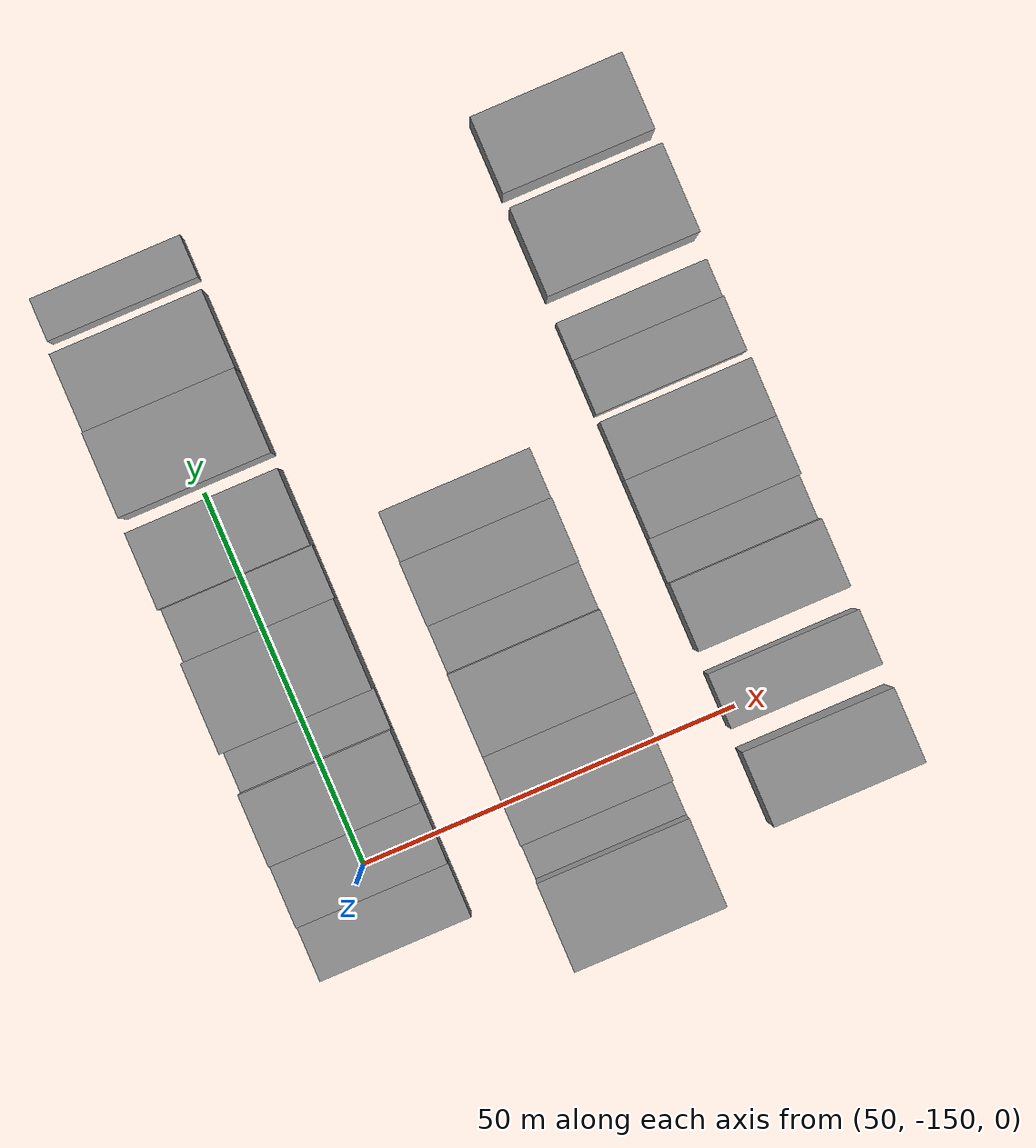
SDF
<sdf version="1.6">
 <world name="default">
  <model name="building_21">
   <static>1</static>
   <pose>50.0000 -156.8702 0 0.000000 0.000000 0.000000</pose>
   <link name="link">
    <pose>0 0 7.50 0 0 0</pose>
    <collision name="collision"><geometry><box><size>20.0000 7.2352 15.0000</size></box></geometry></collision>
    <visual name="visual">
     <cast_shadows>0</cast_shadows>
     <geometry><box><size>20.0000 7.2352 15.0000</size></box></geometry>
     <material>
      <script>
       <uri>model://grey_wall/materials/scripts</uri>
       <uri>model://grey_wall/materials/textures</uri>
       <name>vrc/grey_wall</name>
      </script>
     </material>
    </visual>
   </link>
  </model>
  <model name="building_22">
   <static>1</static>
   <pose>50.0000 -149.1597 0 0.000000 0.000000 0.000000</pose>
   <link name="link">
    <pose>0 0 9.00 0 0 0</pose>
    <collision name="collision"><geometry><box><size>20.0000 8.1858 18.0000</size></box></geometry></collision>
    <visual name="visual">
     <cast_shadows>0</cast_shadows>
     <geometry><box><size>20.0000 8.1858 18.0000</size></box></geometry>
     <material>
      <script>
       <uri>model://grey_wall/materials/scripts</uri>
       <uri>model://grey_wall/materials/textures</uri>
       <name>vrc/grey_wall</name>
      </script>
     </material>
    </visual>
   </link>
  </model>
  <model name="building_23">
   <static>1</static>
   <pose>50.0000 -140.3261 0 0.000000 0.000000 0.000000</pose>
   <link name="link">
    <pose>0 0 10.50 0 0 0</pose>
    <collision name="collision"><geometry><box><size>20.0000 9.4813 21.0000</size></box></geometry></collision>
    <visual name="visual">
     <cast_shadows>0</cast_shadows>
     <geometry><box><size>20.0000 9.4813 21.0000</size></box></geometry>
     <material>
      <script>
       <uri>model://grey_wall/materials/scripts</uri>
       <uri>model://grey_wall/materials/textures</uri>
       <name>vrc/grey_wall</name>
      </script>
     </material>
    </visual>
   </link>
  </model>
  <model name="building_24">
   <static>1</static>
   <pose>50.0000 -132.8740 0 0.000000 0.000000 0.000000</pose>
   <link name="link">
    <pose>0 0 6.00 0 0 0</pose>
    <collision name="collision"><geometry><box><size>20.0000 5.4228 12.0000</size></box></geometry></collision>
    <visual name="visual">
     <cast_shadows>0</cast_shadows>
     <geometry><box><size>20.0000 5.4228 12.0000</size></box></geometry>
     <material>
      <script>
       <uri>model://grey_wall/materials/scripts</uri>
       <uri>model://grey_wall/materials/textures</uri>
       <name>vrc/grey_wall</name>
      </script>
     </material>
    </visual>
   </link>
  </model>
  <model name="building_25">
   <static>1</static>
   <pose>50.0000 -124.2080 0 0.000000 0.000000 0.000000</pose>
   <link name="link">
    <pose>0 0 12.00 0 0 0</pose>
    <collision name="collision"><geometry><box><size>20.0000 11.9093 24.0000</size></box></geometry></collision>
    <visual name="visual">
     <cast_shadows>0</cast_shadows>
     <geometry><box><size>20.0000 11.9093 24.0000</size></box></geometry>
     <material>
      <script>
       <uri>model://grey_wall/materials/scripts</uri>
       <uri>model://grey_wall/materials/textures</uri>
       <name>vrc/grey_wall</name>
      </script>
     </material>
    </visual>
   </link>
  </model>
  <model name="building_26">
   <static>1</static>
   <pose>50.0000 -114.7484 0 0.000000 0.000000 0.000000</pose>
   <link name="link">
    <pose>0 0 7.50 0 0 0</pose>
    <collision name="collision"><geometry><box><size>20.0000 7.0100 15.0000</size></box></geometry></collision>
    <visual name="visual">
     <cast_shadows>0</cast_shadows>
     <geometry><box><size>20.0000 7.0100 15.0000</size></box></geometry>
     <material>
      <script>
       <uri>model://grey_wall/materials/scripts</uri>
       <uri>model://grey_wall/materials/textures</uri>
       <name>vrc/grey_wall</name>
      </script>
     </material>
    </visual>
   </link>
  </model>
  <model name="building_27">
   <static>1</static>
   <pose>50.0000 -106.2114 0 0.000000 0.000000 0.000000</pose>
   <link name="link">
    <pose>0 0 12.00 0 0 0</pose>
    <collision name="collision"><geometry><box><size>20.0000 10.0640 24.0000</size></box></geometry></collision>
    <visual name="visual">
     <cast_shadows>0</cast_shadows>
     <geometry><box><size>20.0000 10.0640 24.0000</size></box></geometry>
     <material>
      <script>
       <uri>model://grey_wall/materials/scripts</uri>
       <uri>model://grey_wall/materials/textures</uri>
       <name>vrc/grey_wall</name>
      </script>
     </material>
    </visual>
   </link>
  </model>
  <model name="building_28">
   <static>1</static>
   <pose>50.0000 -93.5973 0 0.000000 0.000000 0.000000</pose>
   <link name="link">
    <pose>0 0 12.00 0 0 0</pose>
    <collision name="collision"><geometry><box><size>20.0000 11.1640 24.0000</size></box></geometry></collision>
    <visual name="visual">
     <cast_shadows>0</cast_shadows>
     <geometry><box><size>20.0000 11.1640 24.0000</size></box></geometry>
     <material>
      <script>
       <uri>model://grey_wall/materials/scripts</uri>
       <uri>model://grey_wall/materials/textures</uri>
       <name>vrc/grey_wall</name>
      </script>
     </material>
    </visual>
   </link>
  </model>
  <model name="building_29">
   <static>1</static>
   <pose>50.0000 -82.8257 0 0.000000 0.000000 0.000000</pose>
   <link name="link">
    <pose>0 0 10.50 0 0 0</pose>
    <collision name="collision"><geometry><box><size>20.0000 10.3791 21.0000</size></box></geometry></collision>
    <visual name="visual">
     <cast_shadows>0</cast_shadows>
     <geometry><box><size>20.0000 10.3791 21.0000</size></box></geometry>
     <material>
      <script>
       <uri>model://grey_wall/materials/scripts</uri>
       <uri>model://grey_wall/materials/textures</uri>
       <name>vrc/grey_wall</name>
      </script>
     </material>
    </visual>
   </link>
  </model>
  <model name="building_30">
   <static>1</static>
   <pose>50.0000 -72.8177 0 0.000000 0.000000 0.000000</pose>
   <link name="link">
    <pose>0 0 6.00 0 0 0</pose>
    <collision name="collision"><geometry><box><size>20.0000 5.6370 12.0000</size></box></geometry></collision>
    <visual name="visual">
     <cast_shadows>0</cast_shadows>
     <geometry><box><size>20.0000 5.6370 12.0000</size></box></geometry>
     <material>
      <script>
       <uri>model://grey_wall/materials/scripts</uri>
       <uri>model://grey_wall/materials/textures</uri>
       <name>vrc/grey_wall</name>
      </script>
     </material>
    </visual>
   </link>
  </model>
  <model name="building_96">
   <static>1</static>
   <pose>79.0000 -165.2545 0 0.000000 0.000000 0.000000</pose>
   <link name="link">
    <pose>0 0 12.00 0 0 0</pose>
    <collision name="collision"><geometry><box><size>20.0000 11.6350 24.0000</size></box></geometry></collision>
    <visual name="visual">
     <cast_shadows>0</cast_shadows>
     <geometry><box><size>20.0000 11.6350 24.0000</size></box></geometry>
     <material>
      <script>
       <uri>model://grey_wall/materials/scripts</uri>
       <uri>model://grey_wall/materials/textures</uri>
       <name>vrc/grey_wall</name>
      </script>
     </material>
    </visual>
   </link>
  </model>
  <model name="building_97">
   <static>1</static>
   <pose>79.0000 -156.9919 0 0.000000 0.000000 0.000000</pose>
   <link name="link">
    <pose>0 0 6.00 0 0 0</pose>
    <collision name="collision"><geometry><box><size>20.0000 4.8903 12.0000</size></box></geometry></collision>
    <visual name="visual">
     <cast_shadows>0</cast_shadows>
     <geometry><box><size>20.0000 4.8903 12.0000</size></box></geometry>
     <material>
      <script>
       <uri>model://grey_wall/materials/scripts</uri>
       <uri>model://grey_wall/materials/textures</uri>
       <name>vrc/grey_wall</name>
      </script>
     </material>
    </visual>
   </link>
  </model>
  <model name="building_98">
   <static>1</static>
   <pose>79.0000 -148.7272 0 0.000000 0.000000 0.000000</pose>
   <link name="link">
    <pose>0 0 12.00 0 0 0</pose>
    <collision name="collision"><geometry><box><size>20.0000 11.6391 24.0000</size></box></geometry></collision>
    <visual name="visual">
     <cast_shadows>0</cast_shadows>
     <geometry><box><size>20.0000 11.6391 24.0000</size></box></geometry>
     <material>
      <script>
       <uri>model://grey_wall/materials/scripts</uri>
       <uri>model://grey_wall/materials/textures</uri>
       <name>vrc/grey_wall</name>
      </script>
     </material>
    </visual>
   </link>
  </model>
  <model name="building_99">
   <static>1</static>
   <pose>79.0000 -137.5012 0 0.000000 0.000000 0.000000</pose>
   <link name="link">
    <pose>0 0 12.00 0 0 0</pose>
    <collision name="collision"><geometry><box><size>20.0000 10.8128 24.0000</size></box></geometry></collision>
    <visual name="visual">
     <cast_shadows>0</cast_shadows>
     <geometry><box><size>20.0000 10.8128 24.0000</size></box></geometry>
     <material>
      <script>
       <uri>model://grey_wall/materials/scripts</uri>
       <uri>model://grey_wall/materials/textures</uri>
       <name>vrc/grey_wall</name>
      </script>
     </material>
    </visual>
   </link>
  </model>
  <model name="building_100">
   <static>1</static>
   <pose>79.0000 -128.9704 0 0.000000 0.000000 0.000000</pose>
   <link name="link">
    <pose>0 0 7.50 0 0 0</pose>
    <collision name="collision"><geometry><box><size>20.0000 6.2487 15.0000</size></box></geometry></collision>
    <visual name="visual">
     <cast_shadows>0</cast_shadows>
     <geometry><box><size>20.0000 6.2487 15.0000</size></box></geometry>
     <material>
      <script>
       <uri>model://grey_wall/materials/scripts</uri>
       <uri>model://grey_wall/materials/textures</uri>
       <name>vrc/grey_wall</name>
      </script>
     </material>
    </visual>
   </link>
  </model>
  <model name="building_101">
   <static>1</static>
   <pose>79.0000 -121.6232 0 0.000000 0.000000 0.000000</pose>
   <link name="link">
    <pose>0 0 10.50 0 0 0</pose>
    <collision name="collision"><geometry><box><size>20.0000 8.4457 21.0000</size></box></geometry></collision>
    <visual name="visual">
     <cast_shadows>0</cast_shadows>
     <geometry><box><size>20.0000 8.4457 21.0000</size></box></geometry>
     <material>
      <script>
       <uri>model://grey_wall/materials/scripts</uri>
       <uri>model://grey_wall/materials/textures</uri>
       <name>vrc/grey_wall</name>
      </script>
     </material>
    </visual>
   </link>
  </model>
  <model name="building_102">
   <static>1</static>
   <pose>79.0000 -114.0751 0 0.000000 0.000000 0.000000</pose>
   <link name="link">
    <pose>0 0 7.50 0 0 0</pose>
    <collision name="collision"><geometry><box><size>20.0000 6.6504 15.0000</size></box></geometry></collision>
    <visual name="visual">
     <cast_shadows>0</cast_shadows>
     <geometry><box><size>20.0000 6.6504 15.0000</size></box></geometry>
     <material>
      <script>
       <uri>model://grey_wall/materials/scripts</uri>
       <uri>model://grey_wall/materials/textures</uri>
       <name>vrc/grey_wall</name>
      </script>
     </material>
    </visual>
   </link>
  </model>
  <model name="building_162">
   <static>1</static>
   <pose>108.0000 -159.6950 0 0.000000 0.000000 0.000000</pose>
   <link name="link">
    <pose>0 0 10.50 0 0 0</pose>
    <collision name="collision"><geometry><box><size>20.0000 9.8660 21.0000</size></box></geometry></collision>
    <visual name="visual">
     <cast_shadows>0</cast_shadows>
     <geometry><box><size>20.0000 9.8660 21.0000</size></box></geometry>
     <material>
      <script>
       <uri>model://grey_wall/materials/scripts</uri>
       <uri>model://grey_wall/materials/textures</uri>
       <name>vrc/grey_wall</name>
      </script>
     </material>
    </visual>
   </link>
  </model>
  <model name="building_163">
   <static>1</static>
   <pose>108.0000 -148.1454 0 0.000000 0.000000 0.000000</pose>
   <link name="link">
    <pose>0 0 9.00 0 0 0</pose>
    <collision name="collision"><geometry><box><size>20.0000 7.2331 18.0000</size></box></geometry></collision>
    <visual name="visual">
     <cast_shadows>0</cast_shadows>
     <geometry><box><size>20.0000 7.2331 18.0000</size></box></geometry>
     <material>
      <script>
       <uri>model://grey_wall/materials/scripts</uri>
       <uri>model://grey_wall/materials/textures</uri>
       <name>vrc/grey_wall</name>
      </script>
     </material>
    </visual>
   </link>
  </model>
  <model name="building_164">
   <static>1</static>
   <pose>108.0000 -137.0454 0 0.000000 0.000000 0.000000</pose>
   <link name="link">
    <pose>0 0 10.50 0 0 0</pose>
    <collision name="collision"><geometry><box><size>20.0000 8.9670 21.0000</size></box></geometry></collision>
    <visual name="visual">
     <cast_shadows>0</cast_shadows>
     <geometry><box><size>20.0000 8.9670 21.0000</size></box></geometry>
     <material>
      <script>
       <uri>model://grey_wall/materials/scripts</uri>
       <uri>model://grey_wall/materials/textures</uri>
       <name>vrc/grey_wall</name>
      </script>
     </material>
    </visual>
   </link>
  </model>
  <model name="building_165">
   <static>1</static>
   <pose>108.0000 -129.6242 0 0.000000 0.000000 0.000000</pose>
   <link name="link">
    <pose>0 0 6.00 0 0 0</pose>
    <collision name="collision"><geometry><box><size>20.0000 5.8754 12.0000</size></box></geometry></collision>
    <visual name="visual">
     <cast_shadows>0</cast_shadows>
     <geometry><box><size>20.0000 5.8754 12.0000</size></box></geometry>
     <material>
      <script>
       <uri>model://grey_wall/materials/scripts</uri>
       <uri>model://grey_wall/materials/textures</uri>
       <name>vrc/grey_wall</name>
      </script>
     </material>
    </visual>
   </link>
  </model>
  <model name="building_166">
   <static>1</static>
   <pose>108.0000 -122.8321 0 0.000000 0.000000 0.000000</pose>
   <link name="link">
    <pose>0 0 9.00 0 0 0</pose>
    <collision name="collision"><geometry><box><size>20.0000 7.7088 18.0000</size></box></geometry></collision>
    <visual name="visual">
     <cast_shadows>0</cast_shadows>
     <geometry><box><size>20.0000 7.7088 18.0000</size></box></geometry>
     <material>
      <script>
       <uri>model://grey_wall/materials/scripts</uri>
       <uri>model://grey_wall/materials/textures</uri>
       <name>vrc/grey_wall</name>
      </script>
     </material>
    </visual>
   </link>
  </model>
  <model name="building_167">
   <static>1</static>
   <pose>108.0000 -115.1325 0 0.000000 0.000000 0.000000</pose>
   <link name="link">
    <pose>0 0 9.00 0 0 0</pose>
    <collision name="collision"><geometry><box><size>20.0000 7.6905 18.0000</size></box></geometry></collision>
    <visual name="visual">
     <cast_shadows>0</cast_shadows>
     <geometry><box><size>20.0000 7.6905 18.0000</size></box></geometry>
     <material>
      <script>
       <uri>model://grey_wall/materials/scripts</uri>
       <uri>model://grey_wall/materials/textures</uri>
       <name>vrc/grey_wall</name>
      </script>
     </material>
    </visual>
   </link>
  </model>
  <model name="building_168">
   <static>1</static>
   <pose>108.0000 -106.6821 0 0.000000 0.000000 0.000000</pose>
   <link name="link">
    <pose>0 0 7.50 0 0 0</pose>
    <collision name="collision"><geometry><box><size>20.0000 7.2102 15.0000</size></box></geometry></collision>
    <visual name="visual">
     <cast_shadows>0</cast_shadows>
     <geometry><box><size>20.0000 7.2102 15.0000</size></box></geometry>
     <material>
      <script>
       <uri>model://grey_wall/materials/scripts</uri>
       <uri>model://grey_wall/materials/textures</uri>
       <name>vrc/grey_wall</name>
      </script>
     </material>
    </visual>
   </link>
  </model>
  <model name="building_169">
   <static>1</static>
   <pose>108.0000 -100.5442 0 0.000000 0.000000 0.000000</pose>
   <link name="link">
    <pose>0 0 6.00 0 0 0</pose>
    <collision name="collision"><geometry><box><size>20.0000 5.0657 12.0000</size></box></geometry></collision>
    <visual name="visual">
     <cast_shadows>0</cast_shadows>
     <geometry><box><size>20.0000 5.0657 12.0000</size></box></geometry>
     <material>
      <script>
       <uri>model://grey_wall/materials/scripts</uri>
       <uri>model://grey_wall/materials/textures</uri>
       <name>vrc/grey_wall</name>
      </script>
     </material>
    </visual>
   </link>
  </model>
  <model name="building_170">
   <static>1</static>
   <pose>108.0000 -89.1897 0 0.000000 0.000000 0.000000</pose>
   <link name="link">
    <pose>0 0 12.00 0 0 0</pose>
    <collision name="collision"><geometry><box><size>20.0000 11.6433 24.0000</size></box></geometry></collision>
    <visual name="visual">
     <cast_shadows>0</cast_shadows>
     <geometry><box><size>20.0000 11.6433 24.0000</size></box></geometry>
     <material>
      <script>
       <uri>model://grey_wall/materials/scripts</uri>
       <uri>model://grey_wall/materials/textures</uri>
       <name>vrc/grey_wall</name>
      </script>
     </material>
    </visual>
   </link>
  </model>
  <model name="building_171">
   <static>1</static>
   <pose>108.0000 -76.3008 0 0.000000 0.000000 0.000000</pose>
   <link name="link">
    <pose>0 0 10.50 0 0 0</pose>
    <collision name="collision"><geometry><box><size>20.0000 10.1346 21.0000</size></box></geometry></collision>
    <visual name="visual">
     <cast_shadows>0</cast_shadows>
     <geometry><box><size>20.0000 10.1346 21.0000</size></box></geometry>
     <material>
      <script>
       <uri>model://grey_wall/materials/scripts</uri>
       <uri>model://grey_wall/materials/textures</uri>
       <name>vrc/grey_wall</name>
      </script>
     </material>
    </visual>
   </link>
  </model>
 </world>
</sdf>
